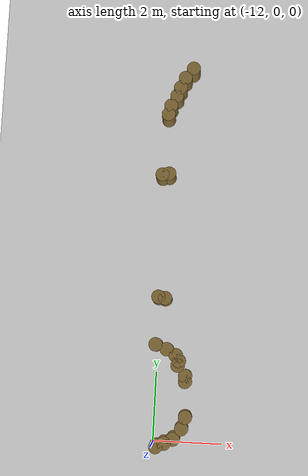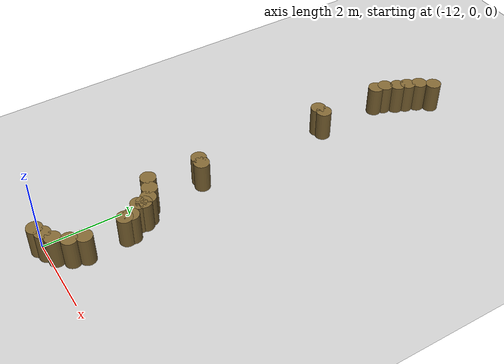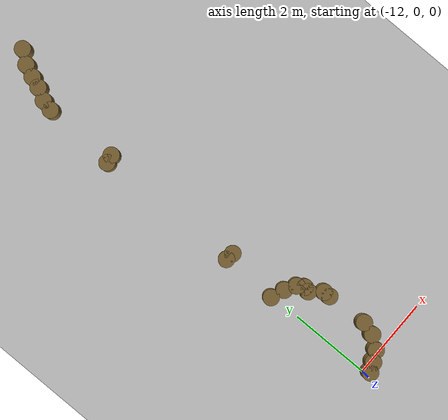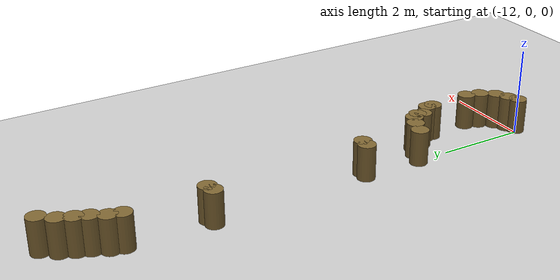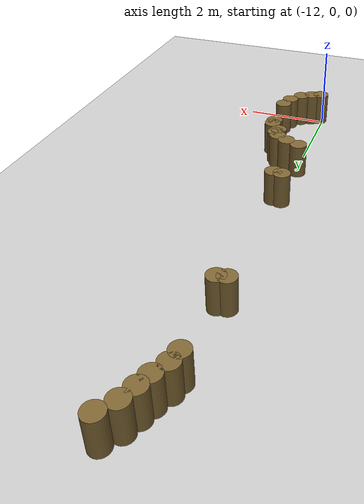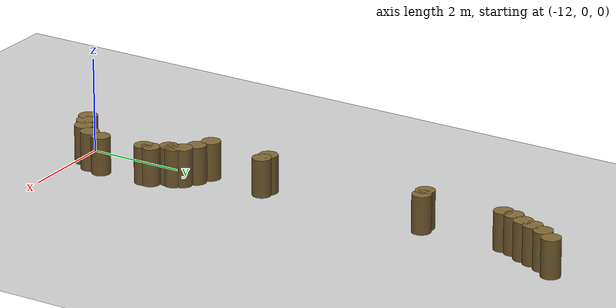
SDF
<sdf version="1.6">
 <world name="default">
  <model name="ground_plane">
   <static>1</static>
   <link name="link">
    <collision name="collision">
     <geometry><plane><normal>0 0 1</normal><size>100 100</size></plane></geometry>
     <surface><friction><ode><mu>100</mu><mu2>50</mu2></ode></friction></surface>
    </collision>
    <visual name="visual">
     <cast_shadows>0</cast_shadows>
     <geometry><plane><normal>0 0 1</normal><size>100 100</size></plane></geometry>
     <material>
      <script><uri>file://media/materials/scripts/gazebo.material</uri><name>Gazebo/Grey</name></script>
     </material>
    </visual>
   </link>
  </model>
  <model name="mini_cylinder_0_clone_0_clone_clone_clone_clone_3_clone_20_clone_7">
   <link name="link">
    <inertial>
     <mass>1</mass>
     <inertia><ixx>0.145833</ixx><ixy>0</ixy><ixz>0</ixz><iyy>0.145833</iyy><iyz>0</iyz><izz>0.125</izz></inertia>
    </inertial>
    <visual name="visual">
     <geometry><cylinder><radius>0.2</radius><length>0.8</length></cylinder></geometry>
     <material>
      <script><name>Gazebo/Grey</name><uri>file://media/materials/scripts/gazebo.material</uri></script>
      <shader type="vertex"><normal_map>__default__</normal_map></shader>
      <ambient>0.5 0.4 0.2 1</ambient>
      <diffuse>0.7 0.7 0.7 1</diffuse>
      <specular>0.01 0.01 0.01 1</specular>
      <emissive>0 0 0 1</emissive>
     </material>
    </visual>
    <collision name="collision">
     <geometry><cylinder><radius>0.2</radius><length>0.8</length></cylinder></geometry>
     <surface>
      <friction>
       <ode><mu>1</mu><mu2>1</mu2><fdir1>0 0 0</fdir1><slip1>0</slip1><slip2>0</slip2></ode>
       <torsional>
        <coefficient>1</coefficient>
        <patch_radius>0</patch_radius>
        <surface_radius>0</surface_radius>
        <use_patch_radius>1</use_patch_radius>
        <ode><slip>0</slip></ode>
       </torsional>
      </friction>
      <bounce><restitution_coefficient>0</restitution_coefficient><threshold>1e+06</threshold></bounce>
      <contact>
       <collide_without_contact>0</collide_without_contact>
       <collide_without_contact_bitmask>1</collide_without_contact_bitmask>
       <collide_bitmask>1</collide_bitmask>
       <ode>
        <soft_cfm>0</soft_cfm>
        <soft_erp>0.2</soft_erp>
        <kp>1e+13</kp>
        <kd>1</kd>
        <max_vel>0.01</max_vel>
        <min_depth>0</min_depth>
       </ode>
       <bullet>
        <split_impulse>1</split_impulse>
        <split_impulse_penetration_threshold>-0.01</split_impulse_penetration_threshold>
        <soft_cfm>0</soft_cfm>
        <soft_erp>0.2</soft_erp>
        <kp>1e+13</kp>
        <kd>1</kd>
       </bullet>
      </contact>
     </surface>
    </collision>
   </link>
   <static>1</static>
   <pose>-11.899 -0.092159 0.4 0 -0 0</pose>
  </model>
  <model name="mini_cylinder_0_clone_0_clone_clone_clone_clone_3_clone_20_clone_8">
   <link name="link">
    <inertial>
     <mass>1</mass>
     <inertia><ixx>0.145833</ixx><ixy>0</ixy><ixz>0</ixz><iyy>0.145833</iyy><iyz>0</iyz><izz>0.125</izz></inertia>
    </inertial>
    <visual name="visual">
     <geometry><cylinder><radius>0.2</radius><length>0.8</length></cylinder></geometry>
     <material>
      <script><name>Gazebo/Grey</name><uri>file://media/materials/scripts/gazebo.material</uri></script>
      <shader type="vertex"><normal_map>__default__</normal_map></shader>
      <ambient>0.5 0.4 0.2 1</ambient>
      <diffuse>0.7 0.7 0.7 1</diffuse>
      <specular>0.01 0.01 0.01 1</specular>
      <emissive>0 0 0 1</emissive>
     </material>
    </visual>
    <collision name="collision">
     <geometry><cylinder><radius>0.2</radius><length>0.8</length></cylinder></geometry>
     <surface>
      <friction>
       <ode><mu>1</mu><mu2>1</mu2><fdir1>0 0 0</fdir1><slip1>0</slip1><slip2>0</slip2></ode>
       <torsional>
        <coefficient>1</coefficient>
        <patch_radius>0</patch_radius>
        <surface_radius>0</surface_radius>
        <use_patch_radius>1</use_patch_radius>
        <ode><slip>0</slip></ode>
       </torsional>
      </friction>
      <bounce><restitution_coefficient>0</restitution_coefficient><threshold>1e+06</threshold></bounce>
      <contact>
       <collide_without_contact>0</collide_without_contact>
       <collide_without_contact_bitmask>1</collide_without_contact_bitmask>
       <collide_bitmask>1</collide_bitmask>
       <ode>
        <soft_cfm>0</soft_cfm>
        <soft_erp>0.2</soft_erp>
        <kp>1e+13</kp>
        <kd>1</kd>
        <max_vel>0.01</max_vel>
        <min_depth>0</min_depth>
       </ode>
       <bullet>
        <split_impulse>1</split_impulse>
        <split_impulse_penetration_threshold>-0.01</split_impulse_penetration_threshold>
        <soft_cfm>0</soft_cfm>
        <soft_erp>0.2</soft_erp>
        <kp>1e+13</kp>
        <kd>1</kd>
       </bullet>
      </contact>
     </surface>
    </collision>
   </link>
   <static>1</static>
   <pose>-11.6728 0.008912 0.4 0 -0 0</pose>
  </model>
  <model name="mini_cylinder_0_clone_0_clone_clone_clone_clone_3_clone_20_clone_9">
   <link name="link">
    <inertial>
     <mass>1</mass>
     <inertia><ixx>0.145833</ixx><ixy>0</ixy><ixz>0</ixz><iyy>0.145833</iyy><iyz>0</iyz><izz>0.125</izz></inertia>
    </inertial>
    <visual name="visual">
     <geometry><cylinder><radius>0.2</radius><length>0.8</length></cylinder></geometry>
     <material>
      <script><name>Gazebo/Grey</name><uri>file://media/materials/scripts/gazebo.material</uri></script>
      <shader type="vertex"><normal_map>__default__</normal_map></shader>
      <ambient>0.5 0.4 0.2 1</ambient>
      <diffuse>0.7 0.7 0.7 1</diffuse>
      <specular>0.01 0.01 0.01 1</specular>
      <emissive>0 0 0 1</emissive>
     </material>
    </visual>
    <collision name="collision">
     <geometry><cylinder><radius>0.2</radius><length>0.8</length></cylinder></geometry>
     <surface>
      <friction>
       <ode><mu>1</mu><mu2>1</mu2><fdir1>0 0 0</fdir1><slip1>0</slip1><slip2>0</slip2></ode>
       <torsional>
        <coefficient>1</coefficient>
        <patch_radius>0</patch_radius>
        <surface_radius>0</surface_radius>
        <use_patch_radius>1</use_patch_radius>
        <ode><slip>0</slip></ode>
       </torsional>
      </friction>
      <bounce><restitution_coefficient>0</restitution_coefficient><threshold>1e+06</threshold></bounce>
      <contact>
       <collide_without_contact>0</collide_without_contact>
       <collide_without_contact_bitmask>1</collide_without_contact_bitmask>
       <collide_bitmask>1</collide_bitmask>
       <ode>
        <soft_cfm>0</soft_cfm>
        <soft_erp>0.2</soft_erp>
        <kp>1e+13</kp>
        <kd>1</kd>
        <max_vel>0.01</max_vel>
        <min_depth>0</min_depth>
       </ode>
       <bullet>
        <split_impulse>1</split_impulse>
        <split_impulse_penetration_threshold>-0.01</split_impulse_penetration_threshold>
        <soft_cfm>0</soft_cfm>
        <soft_erp>0.2</soft_erp>
        <kp>1e+13</kp>
        <kd>1</kd>
       </bullet>
      </contact>
     </surface>
    </collision>
   </link>
   <static>1</static>
   <pose>-11.4147 0.142919 0.4 0 -0 0</pose>
  </model>
  <model name="mini_cylinder_0_clone_0_clone_clone_clone_clone_3_clone_20_clone_10">
   <link name="link">
    <inertial>
     <mass>1</mass>
     <inertia><ixx>0.145833</ixx><ixy>0</ixy><ixz>0</ixz><iyy>0.145833</iyy><iyz>0</iyz><izz>0.125</izz></inertia>
    </inertial>
    <visual name="visual">
     <geometry><cylinder><radius>0.2</radius><length>0.8</length></cylinder></geometry>
     <material>
      <script><name>Gazebo/Grey</name><uri>file://media/materials/scripts/gazebo.material</uri></script>
      <shader type="vertex"><normal_map>__default__</normal_map></shader>
      <ambient>0.5 0.4 0.2 1</ambient>
      <diffuse>0.7 0.7 0.7 1</diffuse>
      <specular>0.01 0.01 0.01 1</specular>
      <emissive>0 0 0 1</emissive>
     </material>
    </visual>
    <collision name="collision">
     <geometry><cylinder><radius>0.2</radius><length>0.8</length></cylinder></geometry>
     <surface>
      <friction>
       <ode><mu>1</mu><mu2>1</mu2><fdir1>0 0 0</fdir1><slip1>0</slip1><slip2>0</slip2></ode>
       <torsional>
        <coefficient>1</coefficient>
        <patch_radius>0</patch_radius>
        <surface_radius>0</surface_radius>
        <use_patch_radius>1</use_patch_radius>
        <ode><slip>0</slip></ode>
       </torsional>
      </friction>
      <bounce><restitution_coefficient>0</restitution_coefficient><threshold>1e+06</threshold></bounce>
      <contact>
       <collide_without_contact>0</collide_without_contact>
       <collide_without_contact_bitmask>1</collide_without_contact_bitmask>
       <collide_bitmask>1</collide_bitmask>
       <ode>
        <soft_cfm>0</soft_cfm>
        <soft_erp>0.2</soft_erp>
        <kp>1e+13</kp>
        <kd>1</kd>
        <max_vel>0.01</max_vel>
        <min_depth>0</min_depth>
       </ode>
       <bullet>
        <split_impulse>1</split_impulse>
        <split_impulse_penetration_threshold>-0.01</split_impulse_penetration_threshold>
        <soft_cfm>0</soft_cfm>
        <soft_erp>0.2</soft_erp>
        <kp>1e+13</kp>
        <kd>1</kd>
       </bullet>
      </contact>
     </surface>
    </collision>
   </link>
   <static>1</static>
   <pose>-11.1925 0.439163 0.4 0 -0 0</pose>
  </model>
  <model name="mini_cylinder_0_clone_0_clone_clone_clone_clone_3_clone_20_clone_11">
   <link name="link">
    <inertial>
     <mass>1</mass>
     <inertia><ixx>0.145833</ixx><ixy>0</ixy><ixz>0</ixz><iyy>0.145833</iyy><iyz>0</iyz><izz>0.125</izz></inertia>
    </inertial>
    <visual name="visual">
     <geometry><cylinder><radius>0.2</radius><length>0.8</length></cylinder></geometry>
     <material>
      <script><name>Gazebo/Grey</name><uri>file://media/materials/scripts/gazebo.material</uri></script>
      <shader type="vertex"><normal_map>__default__</normal_map></shader>
      <ambient>0.5 0.4 0.2 1</ambient>
      <diffuse>0.7 0.7 0.7 1</diffuse>
      <specular>0.01 0.01 0.01 1</specular>
      <emissive>0 0 0 1</emissive>
     </material>
    </visual>
    <collision name="collision">
     <geometry><cylinder><radius>0.2</radius><length>0.8</length></cylinder></geometry>
     <surface>
      <friction>
       <ode><mu>1</mu><mu2>1</mu2><fdir1>0 0 0</fdir1><slip1>0</slip1><slip2>0</slip2></ode>
       <torsional>
        <coefficient>1</coefficient>
        <patch_radius>0</patch_radius>
        <surface_radius>0</surface_radius>
        <use_patch_radius>1</use_patch_radius>
        <ode><slip>0</slip></ode>
       </torsional>
      </friction>
      <bounce><restitution_coefficient>0</restitution_coefficient><threshold>1e+06</threshold></bounce>
      <contact>
       <collide_without_contact>0</collide_without_contact>
       <collide_without_contact_bitmask>1</collide_without_contact_bitmask>
       <collide_bitmask>1</collide_bitmask>
       <ode>
        <soft_cfm>0</soft_cfm>
        <soft_erp>0.2</soft_erp>
        <kp>1e+13</kp>
        <kd>1</kd>
        <max_vel>0.01</max_vel>
        <min_depth>0</min_depth>
       </ode>
       <bullet>
        <split_impulse>1</split_impulse>
        <split_impulse_penetration_threshold>-0.01</split_impulse_penetration_threshold>
        <soft_cfm>0</soft_cfm>
        <soft_erp>0.2</soft_erp>
        <kp>1e+13</kp>
        <kd>1</kd>
       </bullet>
      </contact>
     </surface>
    </collision>
   </link>
   <static>1</static>
   <pose>-11.0994 0.765678 0.4 0 -0 0</pose>
  </model>
  <model name="mini_cylinder_0_clone_0_clone_clone_clone_clone_3_clone_20_clone_14">
   <link name="link">
    <inertial>
     <mass>1</mass>
     <inertia><ixx>0.145833</ixx><ixy>0</ixy><ixz>0</ixz><iyy>0.145833</iyy><iyz>0</iyz><izz>0.125</izz></inertia>
    </inertial>
    <visual name="visual">
     <geometry><cylinder><radius>0.2</radius><length>0.8</length></cylinder></geometry>
     <material>
      <script><name>Gazebo/Grey</name><uri>file://media/materials/scripts/gazebo.material</uri></script>
      <shader type="vertex"><normal_map>__default__</normal_map></shader>
      <ambient>0.5 0.4 0.2 1</ambient>
      <diffuse>0.7 0.7 0.7 1</diffuse>
      <specular>0.01 0.01 0.01 1</specular>
      <emissive>0 0 0 1</emissive>
     </material>
    </visual>
    <collision name="collision">
     <geometry><cylinder><radius>0.2</radius><length>0.8</length></cylinder></geometry>
     <surface>
      <friction>
       <ode><mu>1</mu><mu2>1</mu2><fdir1>0 0 0</fdir1><slip1>0</slip1><slip2>0</slip2></ode>
       <torsional>
        <coefficient>1</coefficient>
        <patch_radius>0</patch_radius>
        <surface_radius>0</surface_radius>
        <use_patch_radius>1</use_patch_radius>
        <ode><slip>0</slip></ode>
       </torsional>
      </friction>
      <bounce><restitution_coefficient>0</restitution_coefficient><threshold>1e+06</threshold></bounce>
      <contact>
       <collide_without_contact>0</collide_without_contact>
       <collide_without_contact_bitmask>1</collide_without_contact_bitmask>
       <collide_bitmask>1</collide_bitmask>
       <ode>
        <soft_cfm>0</soft_cfm>
        <soft_erp>0.2</soft_erp>
        <kp>1e+13</kp>
        <kd>1</kd>
        <max_vel>0.01</max_vel>
        <min_depth>0</min_depth>
       </ode>
       <bullet>
        <split_impulse>1</split_impulse>
        <split_impulse_penetration_threshold>-0.01</split_impulse_penetration_threshold>
        <soft_cfm>0</soft_cfm>
        <soft_erp>0.2</soft_erp>
        <kp>1e+13</kp>
        <kd>1</kd>
       </bullet>
      </contact>
     </surface>
    </collision>
   </link>
   <static>1</static>
   <pose>-11.1516 1.93585 0.4 0 -0 0</pose>
  </model>
  <model name="mini_cylinder_0_clone_0_clone_clone_clone_clone_3_clone_20_clone_15">
   <link name="link">
    <inertial>
     <mass>1</mass>
     <inertia><ixx>0.145833</ixx><ixy>0</ixy><ixz>0</ixz><iyy>0.145833</iyy><iyz>0</iyz><izz>0.125</izz></inertia>
    </inertial>
    <visual name="visual">
     <geometry><cylinder><radius>0.2</radius><length>0.8</length></cylinder></geometry>
     <material>
      <script><name>Gazebo/Grey</name><uri>file://media/materials/scripts/gazebo.material</uri></script>
      <shader type="vertex"><normal_map>__default__</normal_map></shader>
      <ambient>0.5 0.4 0.2 1</ambient>
      <diffuse>0.7 0.7 0.7 1</diffuse>
      <specular>0.01 0.01 0.01 1</specular>
      <emissive>0 0 0 1</emissive>
     </material>
    </visual>
    <collision name="collision">
     <geometry><cylinder><radius>0.2</radius><length>0.8</length></cylinder></geometry>
     <surface>
      <friction>
       <ode><mu>1</mu><mu2>1</mu2><fdir1>0 0 0</fdir1><slip1>0</slip1><slip2>0</slip2></ode>
       <torsional>
        <coefficient>1</coefficient>
        <patch_radius>0</patch_radius>
        <surface_radius>0</surface_radius>
        <use_patch_radius>1</use_patch_radius>
        <ode><slip>0</slip></ode>
       </torsional>
      </friction>
      <bounce><restitution_coefficient>0</restitution_coefficient><threshold>1e+06</threshold></bounce>
      <contact>
       <collide_without_contact>0</collide_without_contact>
       <collide_without_contact_bitmask>1</collide_without_contact_bitmask>
       <collide_bitmask>1</collide_bitmask>
       <ode>
        <soft_cfm>0</soft_cfm>
        <soft_erp>0.2</soft_erp>
        <kp>1e+13</kp>
        <kd>1</kd>
        <max_vel>0.01</max_vel>
        <min_depth>0</min_depth>
       </ode>
       <bullet>
        <split_impulse>1</split_impulse>
        <split_impulse_penetration_threshold>-0.01</split_impulse_penetration_threshold>
        <soft_cfm>0</soft_cfm>
        <soft_erp>0.2</soft_erp>
        <kp>1e+13</kp>
        <kd>1</kd>
       </bullet>
      </contact>
     </surface>
    </collision>
   </link>
   <static>1</static>
   <pose>-11.353 2.35543 0.4 0 -0 0</pose>
  </model>
  <model name="mini_cylinder_0_clone_0_clone_clone_clone_clone_3_clone_20_clone_16">
   <link name="link">
    <inertial>
     <mass>1</mass>
     <inertia><ixx>0.145833</ixx><ixy>0</ixy><ixz>0</ixz><iyy>0.145833</iyy><iyz>0</iyz><izz>0.125</izz></inertia>
    </inertial>
    <visual name="visual">
     <geometry><cylinder><radius>0.2</radius><length>0.8</length></cylinder></geometry>
     <material>
      <script><name>Gazebo/Grey</name><uri>file://media/materials/scripts/gazebo.material</uri></script>
      <shader type="vertex"><normal_map>__default__</normal_map></shader>
      <ambient>0.5 0.4 0.2 1</ambient>
      <diffuse>0.7 0.7 0.7 1</diffuse>
      <specular>0.01 0.01 0.01 1</specular>
      <emissive>0 0 0 1</emissive>
     </material>
    </visual>
    <collision name="collision">
     <geometry><cylinder><radius>0.2</radius><length>0.8</length></cylinder></geometry>
     <surface>
      <friction>
       <ode><mu>1</mu><mu2>1</mu2><fdir1>0 0 0</fdir1><slip1>0</slip1><slip2>0</slip2></ode>
       <torsional>
        <coefficient>1</coefficient>
        <patch_radius>0</patch_radius>
        <surface_radius>0</surface_radius>
        <use_patch_radius>1</use_patch_radius>
        <ode><slip>0</slip></ode>
       </torsional>
      </friction>
      <bounce><restitution_coefficient>0</restitution_coefficient><threshold>1e+06</threshold></bounce>
      <contact>
       <collide_without_contact>0</collide_without_contact>
       <collide_without_contact_bitmask>1</collide_without_contact_bitmask>
       <collide_bitmask>1</collide_bitmask>
       <ode>
        <soft_cfm>0</soft_cfm>
        <soft_erp>0.2</soft_erp>
        <kp>1e+13</kp>
        <kd>1</kd>
        <max_vel>0.01</max_vel>
        <min_depth>0</min_depth>
       </ode>
       <bullet>
        <split_impulse>1</split_impulse>
        <split_impulse_penetration_threshold>-0.01</split_impulse_penetration_threshold>
        <soft_cfm>0</soft_cfm>
        <soft_erp>0.2</soft_erp>
        <kp>1e+13</kp>
        <kd>1</kd>
       </bullet>
      </contact>
     </surface>
    </collision>
   </link>
   <static>1</static>
   <pose>-11.1486 1.77327 0.4 0 -0 0</pose>
  </model>
  <model name="mini_cylinder_0_clone_0_clone_clone_clone_clone_3_clone_20_clone_17">
   <link name="link">
    <inertial>
     <mass>1</mass>
     <inertia><ixx>0.145833</ixx><ixy>0</ixy><ixz>0</ixz><iyy>0.145833</iyy><iyz>0</iyz><izz>0.125</izz></inertia>
    </inertial>
    <visual name="visual">
     <geometry><cylinder><radius>0.2</radius><length>0.8</length></cylinder></geometry>
     <material>
      <script><name>Gazebo/Grey</name><uri>file://media/materials/scripts/gazebo.material</uri></script>
      <shader type="vertex"><normal_map>__default__</normal_map></shader>
      <ambient>0.5 0.4 0.2 1</ambient>
      <diffuse>0.7 0.7 0.7 1</diffuse>
      <specular>0.01 0.01 0.01 1</specular>
      <emissive>0 0 0 1</emissive>
     </material>
    </visual>
    <collision name="collision">
     <geometry><cylinder><radius>0.2</radius><length>0.8</length></cylinder></geometry>
     <surface>
      <friction>
       <ode><mu>1</mu><mu2>1</mu2><fdir1>0 0 0</fdir1><slip1>0</slip1><slip2>0</slip2></ode>
       <torsional>
        <coefficient>1</coefficient>
        <patch_radius>0</patch_radius>
        <surface_radius>0</surface_radius>
        <use_patch_radius>1</use_patch_radius>
        <ode><slip>0</slip></ode>
       </torsional>
      </friction>
      <bounce><restitution_coefficient>0</restitution_coefficient><threshold>1e+06</threshold></bounce>
      <contact>
       <collide_without_contact>0</collide_without_contact>
       <collide_without_contact_bitmask>1</collide_without_contact_bitmask>
       <collide_bitmask>1</collide_bitmask>
       <ode>
        <soft_cfm>0</soft_cfm>
        <soft_erp>0.2</soft_erp>
        <kp>1e+13</kp>
        <kd>1</kd>
        <max_vel>0.01</max_vel>
        <min_depth>0</min_depth>
       </ode>
       <bullet>
        <split_impulse>1</split_impulse>
        <split_impulse_penetration_threshold>-0.01</split_impulse_penetration_threshold>
        <soft_cfm>0</soft_cfm>
        <soft_erp>0.2</soft_erp>
        <kp>1e+13</kp>
        <kd>1</kd>
       </bullet>
      </contact>
     </surface>
    </collision>
   </link>
   <static>1</static>
   <pose>-11.3832 2.22483 0.4 0 -0 0</pose>
  </model>
  <model name="mini_cylinder_0_clone_0_clone_clone_clone_clone_3_clone_20_clone_18">
   <link name="link">
    <inertial>
     <mass>1</mass>
     <inertia><ixx>0.145833</ixx><ixy>0</ixy><ixz>0</ixz><iyy>0.145833</iyy><iyz>0</iyz><izz>0.125</izz></inertia>
    </inertial>
    <visual name="visual">
     <geometry><cylinder><radius>0.2</radius><length>0.8</length></cylinder></geometry>
     <material>
      <script><name>Gazebo/Grey</name><uri>file://media/materials/scripts/gazebo.material</uri></script>
      <shader type="vertex"><normal_map>__default__</normal_map></shader>
      <ambient>0.5 0.4 0.2 1</ambient>
      <diffuse>0.7 0.7 0.7 1</diffuse>
      <specular>0.01 0.01 0.01 1</specular>
      <emissive>0 0 0 1</emissive>
     </material>
    </visual>
    <collision name="collision">
     <geometry><cylinder><radius>0.2</radius><length>0.8</length></cylinder></geometry>
     <surface>
      <friction>
       <ode><mu>1</mu><mu2>1</mu2><fdir1>0 0 0</fdir1><slip1>0</slip1><slip2>0</slip2></ode>
       <torsional>
        <coefficient>1</coefficient>
        <patch_radius>0</patch_radius>
        <surface_radius>0</surface_radius>
        <use_patch_radius>1</use_patch_radius>
        <ode><slip>0</slip></ode>
       </torsional>
      </friction>
      <bounce><restitution_coefficient>0</restitution_coefficient><threshold>1e+06</threshold></bounce>
      <contact>
       <collide_without_contact>0</collide_without_contact>
       <collide_without_contact_bitmask>1</collide_without_contact_bitmask>
       <collide_bitmask>1</collide_bitmask>
       <ode>
        <soft_cfm>0</soft_cfm>
        <soft_erp>0.2</soft_erp>
        <kp>1e+13</kp>
        <kd>1</kd>
        <max_vel>0.01</max_vel>
        <min_depth>0</min_depth>
       </ode>
       <bullet>
        <split_impulse>1</split_impulse>
        <split_impulse_penetration_threshold>-0.01</split_impulse_penetration_threshold>
        <soft_cfm>0</soft_cfm>
        <soft_erp>0.2</soft_erp>
        <kp>1e+13</kp>
        <kd>1</kd>
       </bullet>
      </contact>
     </surface>
    </collision>
   </link>
   <static>1</static>
   <pose>-11.453 2.5165 0.4 0 -0 0</pose>
  </model>
  <model name="mini_cylinder_0_clone_0_clone_clone_clone_clone_3_clone_20_clone_19">
   <link name="link">
    <inertial>
     <mass>1</mass>
     <inertia><ixx>0.145833</ixx><ixy>0</ixy><ixz>0</ixz><iyy>0.145833</iyy><iyz>0</iyz><izz>0.125</izz></inertia>
    </inertial>
    <visual name="visual">
     <geometry><cylinder><radius>0.2</radius><length>0.8</length></cylinder></geometry>
     <material>
      <script><name>Gazebo/Grey</name><uri>file://media/materials/scripts/gazebo.material</uri></script>
      <shader type="vertex"><normal_map>__default__</normal_map></shader>
      <ambient>0.5 0.4 0.2 1</ambient>
      <diffuse>0.7 0.7 0.7 1</diffuse>
      <specular>0.01 0.01 0.01 1</specular>
      <emissive>0 0 0 1</emissive>
     </material>
    </visual>
    <collision name="collision">
     <geometry><cylinder><radius>0.2</radius><length>0.8</length></cylinder></geometry>
     <surface>
      <friction>
       <ode><mu>1</mu><mu2>1</mu2><fdir1>0 0 0</fdir1><slip1>0</slip1><slip2>0</slip2></ode>
       <torsional>
        <coefficient>1</coefficient>
        <patch_radius>0</patch_radius>
        <surface_radius>0</surface_radius>
        <use_patch_radius>1</use_patch_radius>
        <ode><slip>0</slip></ode>
       </torsional>
      </friction>
      <bounce><restitution_coefficient>0</restitution_coefficient><threshold>1e+06</threshold></bounce>
      <contact>
       <collide_without_contact>0</collide_without_contact>
       <collide_without_contact_bitmask>1</collide_without_contact_bitmask>
       <collide_bitmask>1</collide_bitmask>
       <ode>
        <soft_cfm>0</soft_cfm>
        <soft_erp>0.2</soft_erp>
        <kp>1e+13</kp>
        <kd>1</kd>
        <max_vel>0.01</max_vel>
        <min_depth>0</min_depth>
       </ode>
       <bullet>
        <split_impulse>1</split_impulse>
        <split_impulse_penetration_threshold>-0.01</split_impulse_penetration_threshold>
        <soft_cfm>0</soft_cfm>
        <soft_erp>0.2</soft_erp>
        <kp>1e+13</kp>
        <kd>1</kd>
       </bullet>
      </contact>
     </surface>
    </collision>
   </link>
   <static>1</static>
   <pose>-11.7157 2.67491 0.4 0 -0 0</pose>
  </model>
  <model name="mini_cylinder_0_clone_0_clone_clone_clone_clone_3_clone_20_clone_20">
   <link name="link">
    <inertial>
     <mass>1</mass>
     <inertia><ixx>0.145833</ixx><ixy>0</ixy><ixz>0</ixz><iyy>0.145833</iyy><iyz>0</iyz><izz>0.125</izz></inertia>
    </inertial>
    <visual name="visual">
     <geometry><cylinder><radius>0.2</radius><length>0.8</length></cylinder></geometry>
     <material>
      <script><name>Gazebo/Grey</name><uri>file://media/materials/scripts/gazebo.material</uri></script>
      <shader type="vertex"><normal_map>__default__</normal_map></shader>
      <ambient>0.5 0.4 0.2 1</ambient>
      <diffuse>0.7 0.7 0.7 1</diffuse>
      <specular>0.01 0.01 0.01 1</specular>
      <emissive>0 0 0 1</emissive>
     </material>
    </visual>
    <collision name="collision">
     <geometry><cylinder><radius>0.2</radius><length>0.8</length></cylinder></geometry>
     <surface>
      <friction>
       <ode><mu>1</mu><mu2>1</mu2><fdir1>0 0 0</fdir1><slip1>0</slip1><slip2>0</slip2></ode>
       <torsional>
        <coefficient>1</coefficient>
        <patch_radius>0</patch_radius>
        <surface_radius>0</surface_radius>
        <use_patch_radius>1</use_patch_radius>
        <ode><slip>0</slip></ode>
       </torsional>
      </friction>
      <bounce><restitution_coefficient>0</restitution_coefficient><threshold>1e+06</threshold></bounce>
      <contact>
       <collide_without_contact>0</collide_without_contact>
       <collide_without_contact_bitmask>1</collide_without_contact_bitmask>
       <collide_bitmask>1</collide_bitmask>
       <ode>
        <soft_cfm>0</soft_cfm>
        <soft_erp>0.2</soft_erp>
        <kp>1e+13</kp>
        <kd>1</kd>
        <max_vel>0.01</max_vel>
        <min_depth>0</min_depth>
       </ode>
       <bullet>
        <split_impulse>1</split_impulse>
        <split_impulse_penetration_threshold>-0.01</split_impulse_penetration_threshold>
        <soft_cfm>0</soft_cfm>
        <soft_erp>0.2</soft_erp>
        <kp>1e+13</kp>
        <kd>1</kd>
       </bullet>
      </contact>
     </surface>
    </collision>
   </link>
   <static>1</static>
   <pose>-12.0426 2.79993 0.4 0 -0 0</pose>
  </model>
  <model name="mini_cylinder_0_clone_0_clone_clone_clone_clone_3_clone_20_clone_40">
   <link name="link">
    <inertial>
     <mass>1</mass>
     <inertia><ixx>0.145833</ixx><ixy>0</ixy><ixz>0</ixz><iyy>0.145833</iyy><iyz>0</iyz><izz>0.125</izz></inertia>
    </inertial>
    <visual name="visual">
     <geometry><cylinder><radius>0.2</radius><length>0.8</length></cylinder></geometry>
     <material>
      <script><name>Gazebo/Grey</name><uri>file://media/materials/scripts/gazebo.material</uri></script>
      <shader type="vertex"><normal_map>__default__</normal_map></shader>
      <ambient>0.5 0.4 0.2 1</ambient>
      <diffuse>0.7 0.7 0.7 1</diffuse>
      <specular>0.01 0.01 0.01 1</specular>
      <emissive>0 0 0 1</emissive>
     </material>
    </visual>
    <collision name="collision">
     <geometry><cylinder><radius>0.2</radius><length>0.8</length></cylinder></geometry>
     <surface>
      <friction>
       <ode><mu>1</mu><mu2>1</mu2><fdir1>0 0 0</fdir1><slip1>0</slip1><slip2>0</slip2></ode>
       <torsional>
        <coefficient>1</coefficient>
        <patch_radius>0</patch_radius>
        <surface_radius>0</surface_radius>
        <use_patch_radius>1</use_patch_radius>
        <ode><slip>0</slip></ode>
       </torsional>
      </friction>
      <bounce><restitution_coefficient>0</restitution_coefficient><threshold>1e+06</threshold></bounce>
      <contact>
       <collide_without_contact>0</collide_without_contact>
       <collide_without_contact_bitmask>1</collide_without_contact_bitmask>
       <collide_bitmask>1</collide_bitmask>
       <ode>
        <soft_cfm>0</soft_cfm>
        <soft_erp>0.2</soft_erp>
        <kp>1e+13</kp>
        <kd>1</kd>
        <max_vel>0.01</max_vel>
        <min_depth>0</min_depth>
       </ode>
       <bullet>
        <split_impulse>1</split_impulse>
        <split_impulse_penetration_threshold>-0.01</split_impulse_penetration_threshold>
        <soft_cfm>0</soft_cfm>
        <soft_erp>0.2</soft_erp>
        <kp>1e+13</kp>
        <kd>1</kd>
       </bullet>
      </contact>
     </surface>
    </collision>
   </link>
   <static>1</static>
   <pose>-11.8364 4.13701 0.4 0 -0 0</pose>
  </model>
  <model name="mini_cylinder_0_clone_0_clone_clone_clone_clone_3_clone_20_clone_41">
   <link name="link">
    <inertial>
     <mass>1</mass>
     <inertia><ixx>0.145833</ixx><ixy>0</ixy><ixz>0</ixz><iyy>0.145833</iyy><iyz>0</iyz><izz>0.125</izz></inertia>
    </inertial>
    <visual name="visual">
     <geometry><cylinder><radius>0.2</radius><length>0.8</length></cylinder></geometry>
     <material>
      <script><name>Gazebo/Grey</name><uri>file://media/materials/scripts/gazebo.material</uri></script>
      <shader type="vertex"><normal_map>__default__</normal_map></shader>
      <ambient>0.5 0.4 0.2 1</ambient>
      <diffuse>0.7 0.7 0.7 1</diffuse>
      <specular>0.01 0.01 0.01 1</specular>
      <emissive>0 0 0 1</emissive>
     </material>
    </visual>
    <collision name="collision">
     <geometry><cylinder><radius>0.2</radius><length>0.8</length></cylinder></geometry>
     <surface>
      <friction>
       <ode><mu>1</mu><mu2>1</mu2><fdir1>0 0 0</fdir1><slip1>0</slip1><slip2>0</slip2></ode>
       <torsional>
        <coefficient>1</coefficient>
        <patch_radius>0</patch_radius>
        <surface_radius>0</surface_radius>
        <use_patch_radius>1</use_patch_radius>
        <ode><slip>0</slip></ode>
       </torsional>
      </friction>
      <bounce><restitution_coefficient>0</restitution_coefficient><threshold>1e+06</threshold></bounce>
      <contact>
       <collide_without_contact>0</collide_without_contact>
       <collide_without_contact_bitmask>1</collide_without_contact_bitmask>
       <collide_bitmask>1</collide_bitmask>
       <ode>
        <soft_cfm>0</soft_cfm>
        <soft_erp>0.2</soft_erp>
        <kp>1e+13</kp>
        <kd>1</kd>
        <max_vel>0.01</max_vel>
        <min_depth>0</min_depth>
       </ode>
       <bullet>
        <split_impulse>1</split_impulse>
        <split_impulse_penetration_threshold>-0.01</split_impulse_penetration_threshold>
        <soft_cfm>0</soft_cfm>
        <soft_erp>0.2</soft_erp>
        <kp>1e+13</kp>
        <kd>1</kd>
       </bullet>
      </contact>
     </surface>
    </collision>
   </link>
   <static>1</static>
   <pose>-12.0326 4.16648 0.4 0 -0 0</pose>
  </model>
  <model name="mini_cylinder_0_clone_0_clone_clone_clone_clone_3_clone_20_clone_65">
   <link name="link">
    <inertial>
     <mass>1</mass>
     <inertia><ixx>0.145833</ixx><ixy>0</ixy><ixz>0</ixz><iyy>0.145833</iyy><iyz>0</iyz><izz>0.125</izz></inertia>
    </inertial>
    <visual name="visual">
     <geometry><cylinder><radius>0.2</radius><length>0.8</length></cylinder></geometry>
     <material>
      <script><name>Gazebo/Grey</name><uri>file://media/materials/scripts/gazebo.material</uri></script>
      <shader type="vertex"><normal_map>__default__</normal_map></shader>
      <ambient>0.5 0.4 0.2 1</ambient>
      <diffuse>0.7 0.7 0.7 1</diffuse>
      <specular>0.01 0.01 0.01 1</specular>
      <emissive>0 0 0 1</emissive>
     </material>
    </visual>
    <collision name="collision">
     <geometry><cylinder><radius>0.2</radius><length>0.8</length></cylinder></geometry>
     <surface>
      <friction>
       <ode><mu>1</mu><mu2>1</mu2><fdir1>0 0 0</fdir1><slip1>0</slip1><slip2>0</slip2></ode>
       <torsional>
        <coefficient>1</coefficient>
        <patch_radius>0</patch_radius>
        <surface_radius>0</surface_radius>
        <use_patch_radius>1</use_patch_radius>
        <ode><slip>0</slip></ode>
       </torsional>
      </friction>
      <bounce><restitution_coefficient>0</restitution_coefficient><threshold>1e+06</threshold></bounce>
      <contact>
       <collide_without_contact>0</collide_without_contact>
       <collide_without_contact_bitmask>1</collide_without_contact_bitmask>
       <collide_bitmask>1</collide_bitmask>
       <ode>
        <soft_cfm>0</soft_cfm>
        <soft_erp>0.2</soft_erp>
        <kp>1e+13</kp>
        <kd>1</kd>
        <max_vel>0.01</max_vel>
        <min_depth>0</min_depth>
       </ode>
       <bullet>
        <split_impulse>1</split_impulse>
        <split_impulse_penetration_threshold>-0.01</split_impulse_penetration_threshold>
        <soft_cfm>0</soft_cfm>
        <soft_erp>0.2</soft_erp>
        <kp>1e+13</kp>
        <kd>1</kd>
       </bullet>
      </contact>
     </surface>
    </collision>
   </link>
   <static>1</static>
   <pose>-12.0949 7.74118 0.4 0 -0 0</pose>
  </model>
  <model name="mini_cylinder_0_clone_0_clone_clone_clone_clone_3_clone_20_clone_66">
   <link name="link">
    <inertial>
     <mass>1</mass>
     <inertia><ixx>0.145833</ixx><ixy>0</ixy><ixz>0</ixz><iyy>0.145833</iyy><iyz>0</iyz><izz>0.125</izz></inertia>
    </inertial>
    <visual name="visual">
     <geometry><cylinder><radius>0.2</radius><length>0.8</length></cylinder></geometry>
     <material>
      <script><name>Gazebo/Grey</name><uri>file://media/materials/scripts/gazebo.material</uri></script>
      <shader type="vertex"><normal_map>__default__</normal_map></shader>
      <ambient>0.5 0.4 0.2 1</ambient>
      <diffuse>0.7 0.7 0.7 1</diffuse>
      <specular>0.01 0.01 0.01 1</specular>
      <emissive>0 0 0 1</emissive>
     </material>
    </visual>
    <collision name="collision">
     <geometry><cylinder><radius>0.2</radius><length>0.8</length></cylinder></geometry>
     <surface>
      <friction>
       <ode><mu>1</mu><mu2>1</mu2><fdir1>0 0 0</fdir1><slip1>0</slip1><slip2>0</slip2></ode>
       <torsional>
        <coefficient>1</coefficient>
        <patch_radius>0</patch_radius>
        <surface_radius>0</surface_radius>
        <use_patch_radius>1</use_patch_radius>
        <ode><slip>0</slip></ode>
       </torsional>
      </friction>
      <bounce><restitution_coefficient>0</restitution_coefficient><threshold>1e+06</threshold></bounce>
      <contact>
       <collide_without_contact>0</collide_without_contact>
       <collide_without_contact_bitmask>1</collide_without_contact_bitmask>
       <collide_bitmask>1</collide_bitmask>
       <ode>
        <soft_cfm>0</soft_cfm>
        <soft_erp>0.2</soft_erp>
        <kp>1e+13</kp>
        <kd>1</kd>
        <max_vel>0.01</max_vel>
        <min_depth>0</min_depth>
       </ode>
       <bullet>
        <split_impulse>1</split_impulse>
        <split_impulse_penetration_threshold>-0.01</split_impulse_penetration_threshold>
        <soft_cfm>0</soft_cfm>
        <soft_erp>0.2</soft_erp>
        <kp>1e+13</kp>
        <kd>1</kd>
       </bullet>
      </contact>
     </surface>
    </collision>
   </link>
   <static>1</static>
   <pose>-11.9005 7.77677 0.4 0 -0 0</pose>
  </model>
  <model name="mini_cylinder_0_clone_0_clone_clone_clone_clone_3_clone_20_clone_75">
   <link name="link">
    <inertial>
     <mass>1</mass>
     <inertia><ixx>0.145833</ixx><ixy>0</ixy><ixz>0</ixz><iyy>0.145833</iyy><iyz>0</iyz><izz>0.125</izz></inertia>
    </inertial>
    <visual name="visual">
     <geometry><cylinder><radius>0.2</radius><length>0.8</length></cylinder></geometry>
     <material>
      <script><name>Gazebo/Grey</name><uri>file://media/materials/scripts/gazebo.material</uri></script>
      <shader type="vertex"><normal_map>__default__</normal_map></shader>
      <ambient>0.5 0.4 0.2 1</ambient>
      <diffuse>0.7 0.7 0.7 1</diffuse>
      <specular>0.01 0.01 0.01 1</specular>
      <emissive>0 0 0 1</emissive>
     </material>
    </visual>
    <collision name="collision">
     <geometry><cylinder><radius>0.2</radius><length>0.8</length></cylinder></geometry>
     <surface>
      <friction>
       <ode><mu>1</mu><mu2>1</mu2><fdir1>0 0 0</fdir1><slip1>0</slip1><slip2>0</slip2></ode>
       <torsional>
        <coefficient>1</coefficient>
        <patch_radius>0</patch_radius>
        <surface_radius>0</surface_radius>
        <use_patch_radius>1</use_patch_radius>
        <ode><slip>0</slip></ode>
       </torsional>
      </friction>
      <bounce><restitution_coefficient>0</restitution_coefficient><threshold>1e+06</threshold></bounce>
      <contact>
       <collide_without_contact>0</collide_without_contact>
       <collide_without_contact_bitmask>1</collide_without_contact_bitmask>
       <collide_bitmask>1</collide_bitmask>
       <ode>
        <soft_cfm>0</soft_cfm>
        <soft_erp>0.2</soft_erp>
        <kp>1e+13</kp>
        <kd>1</kd>
        <max_vel>0.01</max_vel>
        <min_depth>0</min_depth>
       </ode>
       <bullet>
        <split_impulse>1</split_impulse>
        <split_impulse_penetration_threshold>-0.01</split_impulse_penetration_threshold>
        <soft_cfm>0</soft_cfm>
        <soft_erp>0.2</soft_erp>
        <kp>1e+13</kp>
        <kd>1</kd>
       </bullet>
      </contact>
     </surface>
    </collision>
   </link>
   <static>1</static>
   <pose>-11.3343 10.9508 0.4 0 -0 0</pose>
  </model>
  <model name="mini_cylinder_0_clone_0_clone_clone_clone_clone_3_clone_20_clone_76">
   <link name="link">
    <inertial>
     <mass>1</mass>
     <inertia><ixx>0.145833</ixx><ixy>0</ixy><ixz>0</ixz><iyy>0.145833</iyy><iyz>0</iyz><izz>0.125</izz></inertia>
    </inertial>
    <visual name="visual">
     <geometry><cylinder><radius>0.2</radius><length>0.8</length></cylinder></geometry>
     <material>
      <script><name>Gazebo/Grey</name><uri>file://media/materials/scripts/gazebo.material</uri></script>
      <shader type="vertex"><normal_map>__default__</normal_map></shader>
      <ambient>0.5 0.4 0.2 1</ambient>
      <diffuse>0.7 0.7 0.7 1</diffuse>
      <specular>0.01 0.01 0.01 1</specular>
      <emissive>0 0 0 1</emissive>
     </material>
    </visual>
    <collision name="collision">
     <geometry><cylinder><radius>0.2</radius><length>0.8</length></cylinder></geometry>
     <surface>
      <friction>
       <ode><mu>1</mu><mu2>1</mu2><fdir1>0 0 0</fdir1><slip1>0</slip1><slip2>0</slip2></ode>
       <torsional>
        <coefficient>1</coefficient>
        <patch_radius>0</patch_radius>
        <surface_radius>0</surface_radius>
        <use_patch_radius>1</use_patch_radius>
        <ode><slip>0</slip></ode>
       </torsional>
      </friction>
      <bounce><restitution_coefficient>0</restitution_coefficient><threshold>1e+06</threshold></bounce>
      <contact>
       <collide_without_contact>0</collide_without_contact>
       <collide_without_contact_bitmask>1</collide_without_contact_bitmask>
       <collide_bitmask>1</collide_bitmask>
       <ode>
        <soft_cfm>0</soft_cfm>
        <soft_erp>0.2</soft_erp>
        <kp>1e+13</kp>
        <kd>1</kd>
        <max_vel>0.01</max_vel>
        <min_depth>0</min_depth>
       </ode>
       <bullet>
        <split_impulse>1</split_impulse>
        <split_impulse_penetration_threshold>-0.01</split_impulse_penetration_threshold>
        <soft_cfm>0</soft_cfm>
        <soft_erp>0.2</soft_erp>
        <kp>1e+13</kp>
        <kd>1</kd>
       </bullet>
      </contact>
     </surface>
    </collision>
   </link>
   <static>1</static>
   <pose>-11.5616 10.6531 0.4 0 -0 0</pose>
  </model>
  <model name="mini_cylinder_0_clone_0_clone_clone_clone_clone_3_clone_20_clone_77">
   <link name="link">
    <inertial>
     <mass>1</mass>
     <inertia><ixx>0.145833</ixx><ixy>0</ixy><ixz>0</ixz><iyy>0.145833</iyy><iyz>0</iyz><izz>0.125</izz></inertia>
    </inertial>
    <visual name="visual">
     <geometry><cylinder><radius>0.2</radius><length>0.8</length></cylinder></geometry>
     <material>
      <script><name>Gazebo/Grey</name><uri>file://media/materials/scripts/gazebo.material</uri></script>
      <shader type="vertex"><normal_map>__default__</normal_map></shader>
      <ambient>0.5 0.4 0.2 1</ambient>
      <diffuse>0.7 0.7 0.7 1</diffuse>
      <specular>0.01 0.01 0.01 1</specular>
      <emissive>0 0 0 1</emissive>
     </material>
    </visual>
    <collision name="collision">
     <geometry><cylinder><radius>0.2</radius><length>0.8</length></cylinder></geometry>
     <surface>
      <friction>
       <ode><mu>1</mu><mu2>1</mu2><fdir1>0 0 0</fdir1><slip1>0</slip1><slip2>0</slip2></ode>
       <torsional>
        <coefficient>1</coefficient>
        <patch_radius>0</patch_radius>
        <surface_radius>0</surface_radius>
        <use_patch_radius>1</use_patch_radius>
        <ode><slip>0</slip></ode>
       </torsional>
      </friction>
      <bounce><restitution_coefficient>0</restitution_coefficient><threshold>1e+06</threshold></bounce>
      <contact>
       <collide_without_contact>0</collide_without_contact>
       <collide_without_contact_bitmask>1</collide_without_contact_bitmask>
       <collide_bitmask>1</collide_bitmask>
       <ode>
        <soft_cfm>0</soft_cfm>
        <soft_erp>0.2</soft_erp>
        <kp>1e+13</kp>
        <kd>1</kd>
        <max_vel>0.01</max_vel>
        <min_depth>0</min_depth>
       </ode>
       <bullet>
        <split_impulse>1</split_impulse>
        <split_impulse_penetration_threshold>-0.01</split_impulse_penetration_threshold>
        <soft_cfm>0</soft_cfm>
        <soft_erp>0.2</soft_erp>
        <kp>1e+13</kp>
        <kd>1</kd>
       </bullet>
      </contact>
     </surface>
    </collision>
   </link>
   <static>1</static>
   <pose>-11.6871 10.3583 0.4 0 -0 0</pose>
  </model>
  <model name="mini_cylinder_0_clone_0_clone_clone_clone_clone_3_clone_20_clone_78">
   <link name="link">
    <inertial>
     <mass>1</mass>
     <inertia><ixx>0.145833</ixx><ixy>0</ixy><ixz>0</ixz><iyy>0.145833</iyy><iyz>0</iyz><izz>0.125</izz></inertia>
    </inertial>
    <visual name="visual">
     <geometry><cylinder><radius>0.2</radius><length>0.8</length></cylinder></geometry>
     <material>
      <script><name>Gazebo/Grey</name><uri>file://media/materials/scripts/gazebo.material</uri></script>
      <shader type="vertex"><normal_map>__default__</normal_map></shader>
      <ambient>0.5 0.4 0.2 1</ambient>
      <diffuse>0.7 0.7 0.7 1</diffuse>
      <specular>0.01 0.01 0.01 1</specular>
      <emissive>0 0 0 1</emissive>
     </material>
    </visual>
    <collision name="collision">
     <geometry><cylinder><radius>0.2</radius><length>0.8</length></cylinder></geometry>
     <surface>
      <friction>
       <ode><mu>1</mu><mu2>1</mu2><fdir1>0 0 0</fdir1><slip1>0</slip1><slip2>0</slip2></ode>
       <torsional>
        <coefficient>1</coefficient>
        <patch_radius>0</patch_radius>
        <surface_radius>0</surface_radius>
        <use_patch_radius>1</use_patch_radius>
        <ode><slip>0</slip></ode>
       </torsional>
      </friction>
      <bounce><restitution_coefficient>0</restitution_coefficient><threshold>1e+06</threshold></bounce>
      <contact>
       <collide_without_contact>0</collide_without_contact>
       <collide_without_contact_bitmask>1</collide_without_contact_bitmask>
       <collide_bitmask>1</collide_bitmask>
       <ode>
        <soft_cfm>0</soft_cfm>
        <soft_erp>0.2</soft_erp>
        <kp>1e+13</kp>
        <kd>1</kd>
        <max_vel>0.01</max_vel>
        <min_depth>0</min_depth>
       </ode>
       <bullet>
        <split_impulse>1</split_impulse>
        <split_impulse_penetration_threshold>-0.01</split_impulse_penetration_threshold>
        <soft_cfm>0</soft_cfm>
        <soft_erp>0.2</soft_erp>
        <kp>1e+13</kp>
        <kd>1</kd>
       </bullet>
      </contact>
     </surface>
    </collision>
   </link>
   <static>1</static>
   <pose>-11.7857 10.0964 0.4 0 -0 0</pose>
  </model>
  <model name="mini_cylinder_0_clone_0_clone_clone_clone_clone_3_clone_20_clone_79">
   <link name="link">
    <inertial>
     <mass>1</mass>
     <inertia><ixx>0.145833</ixx><ixy>0</ixy><ixz>0</ixz><iyy>0.145833</iyy><iyz>0</iyz><izz>0.125</izz></inertia>
    </inertial>
    <visual name="visual">
     <geometry><cylinder><radius>0.2</radius><length>0.8</length></cylinder></geometry>
     <material>
      <script><name>Gazebo/Grey</name><uri>file://media/materials/scripts/gazebo.material</uri></script>
      <shader type="vertex"><normal_map>__default__</normal_map></shader>
      <ambient>0.5 0.4 0.2 1</ambient>
      <diffuse>0.7 0.7 0.7 1</diffuse>
      <specular>0.01 0.01 0.01 1</specular>
      <emissive>0 0 0 1</emissive>
     </material>
    </visual>
    <collision name="collision">
     <geometry><cylinder><radius>0.2</radius><length>0.8</length></cylinder></geometry>
     <surface>
      <friction>
       <ode><mu>1</mu><mu2>1</mu2><fdir1>0 0 0</fdir1><slip1>0</slip1><slip2>0</slip2></ode>
       <torsional>
        <coefficient>1</coefficient>
        <patch_radius>0</patch_radius>
        <surface_radius>0</surface_radius>
        <use_patch_radius>1</use_patch_radius>
        <ode><slip>0</slip></ode>
       </torsional>
      </friction>
      <bounce><restitution_coefficient>0</restitution_coefficient><threshold>1e+06</threshold></bounce>
      <contact>
       <collide_without_contact>0</collide_without_contact>
       <collide_without_contact_bitmask>1</collide_without_contact_bitmask>
       <collide_bitmask>1</collide_bitmask>
       <ode>
        <soft_cfm>0</soft_cfm>
        <soft_erp>0.2</soft_erp>
        <kp>1e+13</kp>
        <kd>1</kd>
        <max_vel>0.01</max_vel>
        <min_depth>0</min_depth>
       </ode>
       <bullet>
        <split_impulse>1</split_impulse>
        <split_impulse_penetration_threshold>-0.01</split_impulse_penetration_threshold>
        <soft_cfm>0</soft_cfm>
        <soft_erp>0.2</soft_erp>
        <kp>1e+13</kp>
        <kd>1</kd>
       </bullet>
      </contact>
     </surface>
    </collision>
   </link>
   <static>1</static>
   <pose>-11.9441 9.80101 0.4 0 -0 0</pose>
  </model>
  <model name="mini_cylinder_0_clone_0_clone_clone_clone_clone_3_clone_20_clone_80">
   <link name="link">
    <inertial>
     <mass>1</mass>
     <inertia><ixx>0.145833</ixx><ixy>0</ixy><ixz>0</ixz><iyy>0.145833</iyy><iyz>0</iyz><izz>0.125</izz></inertia>
    </inertial>
    <visual name="visual">
     <geometry><cylinder><radius>0.2</radius><length>0.8</length></cylinder></geometry>
     <material>
      <script><name>Gazebo/Grey</name><uri>file://media/materials/scripts/gazebo.material</uri></script>
      <shader type="vertex"><normal_map>__default__</normal_map></shader>
      <ambient>0.5 0.4 0.2 1</ambient>
      <diffuse>0.7 0.7 0.7 1</diffuse>
      <specular>0.01 0.01 0.01 1</specular>
      <emissive>0 0 0 1</emissive>
     </material>
    </visual>
    <collision name="collision">
     <geometry><cylinder><radius>0.2</radius><length>0.8</length></cylinder></geometry>
     <surface>
      <friction>
       <ode><mu>1</mu><mu2>1</mu2><fdir1>0 0 0</fdir1><slip1>0</slip1><slip2>0</slip2></ode>
       <torsional>
        <coefficient>1</coefficient>
        <patch_radius>0</patch_radius>
        <surface_radius>0</surface_radius>
        <use_patch_radius>1</use_patch_radius>
        <ode><slip>0</slip></ode>
       </torsional>
      </friction>
      <bounce><restitution_coefficient>0</restitution_coefficient><threshold>1e+06</threshold></bounce>
      <contact>
       <collide_without_contact>0</collide_without_contact>
       <collide_without_contact_bitmask>1</collide_without_contact_bitmask>
       <collide_bitmask>1</collide_bitmask>
       <ode>
        <soft_cfm>0</soft_cfm>
        <soft_erp>0.2</soft_erp>
        <kp>1e+13</kp>
        <kd>1</kd>
        <max_vel>0.01</max_vel>
        <min_depth>0</min_depth>
       </ode>
       <bullet>
        <split_impulse>1</split_impulse>
        <split_impulse_penetration_threshold>-0.01</split_impulse_penetration_threshold>
        <soft_cfm>0</soft_cfm>
        <soft_erp>0.2</soft_erp>
        <kp>1e+13</kp>
        <kd>1</kd>
       </bullet>
      </contact>
     </surface>
    </collision>
   </link>
   <static>1</static>
   <pose>-12.0046 9.539 0.4 0 -0 0</pose>
  </model>
 </world>
</sdf>
